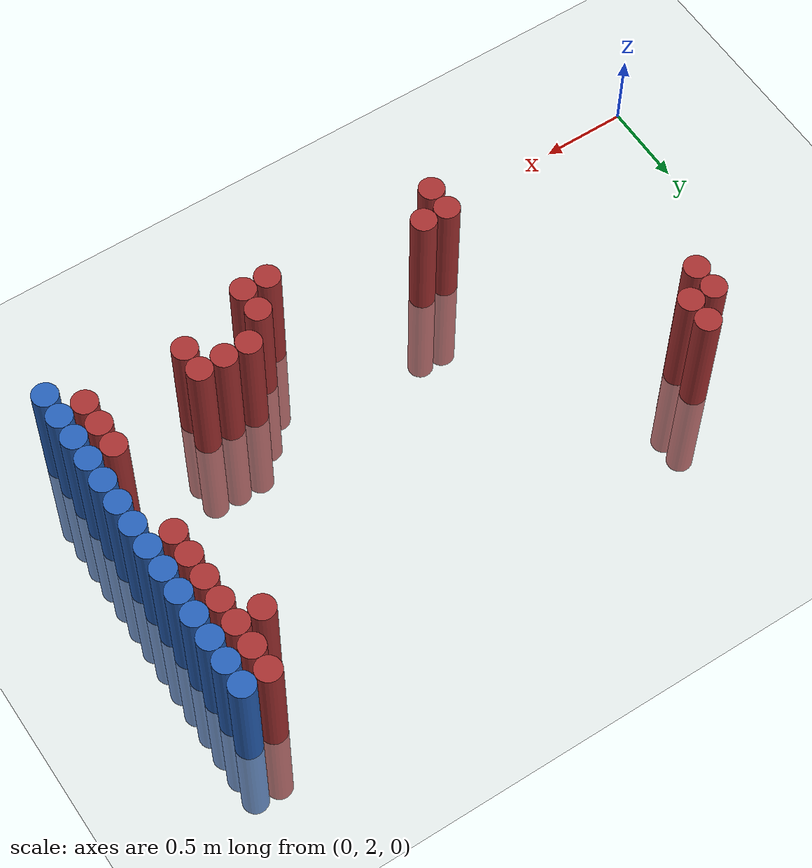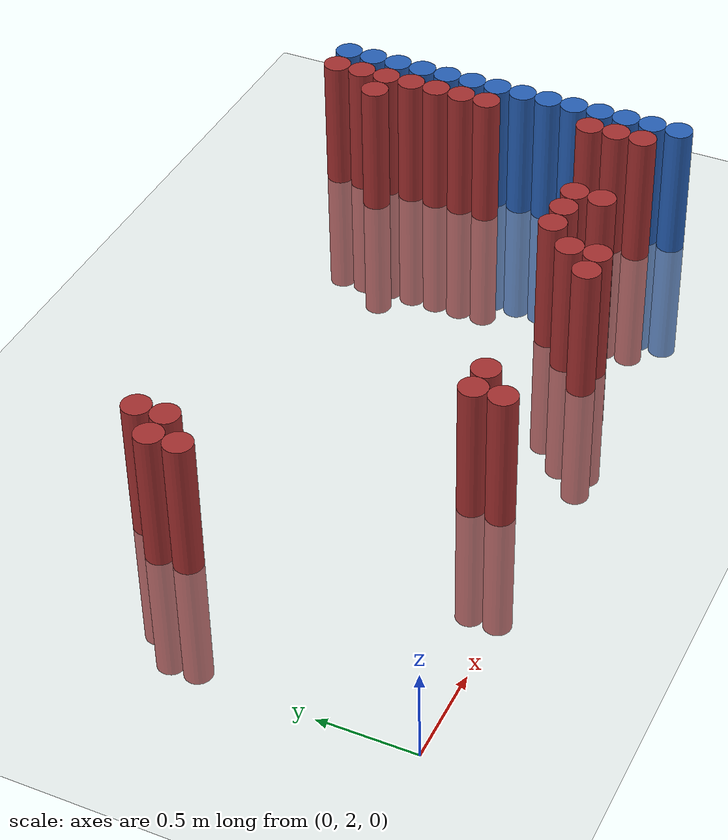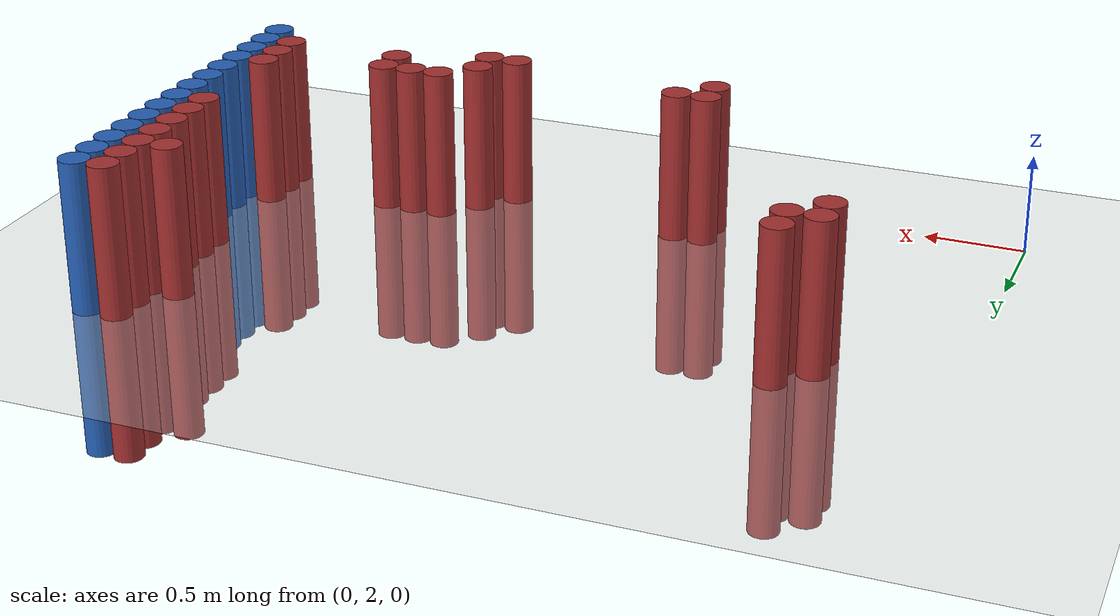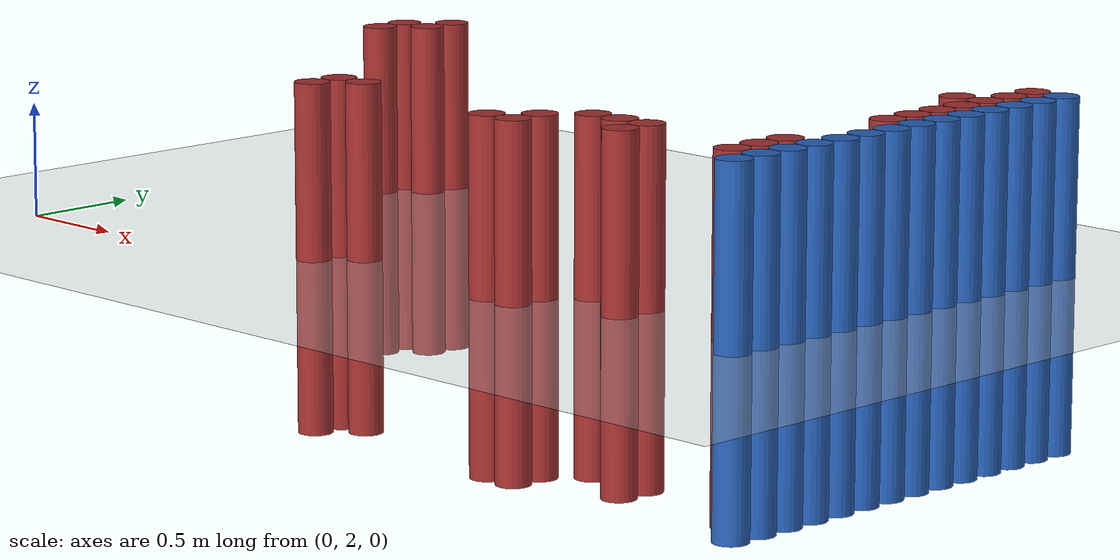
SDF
<sdf version="1.6">
 <world name="default">
  <model name="ground_plane">
   <static>1</static>
   <link name="link">
    <collision name="collision">
     <geometry><plane><normal>0 0 1</normal><size>100 100</size></plane></geometry>
     <surface><friction><ode><mu>100</mu><mu2>50</mu2></ode></friction></surface>
    </collision>
    <visual name="visual">
     <cast_shadows>0</cast_shadows>
     <geometry><plane><normal>0 0 1</normal><size>100 100</size></plane></geometry>
     <material>
      <script><uri>file://media/materials/scripts/gazebo.material</uri><name>Gazebo/Grey</name></script>
     </material>
    </visual>
   </link>
  </model>
  <model name="unit_cylinder_144">
   <static>1</static>
   <pose>3.925000 2.275000 0.000000 0.000000 0.000000 0.000000</pose>
   <link name="link">
    <inertial>
     <mass>1</mass>
     <inertia><ixx>0.145833</ixx><ixy>0</ixy><ixz>0</ixz><iyy>0.145833</iyy><iyz>0</iyz><izz>0.125</izz></inertia>
    </inertial>
    <collision name="collision">
     <geometry><cylinder><radius>0.075000</radius><length>1.5</length></cylinder></geometry>
    </collision>
    <visual name="visual">
     <geometry><cylinder><radius>0.075000</radius><length>1.5</length></cylinder></geometry>
     <material>
      <ambient>0.152000 0.379000 0.720000 1</ambient>
      <diffuse>0.152000 0.379000 0.720000 1</diffuse>
     </material>
     <material>
      <script><name>Gazebo/Grey</name><uri>file://media/materials/scripts/gazebo.material</uri></script>
     </material>
    </visual>
   </link>
  </model>
  <model name="unit_cylinder_146">
   <static>1</static>
   <pose>3.925000 2.425000 0.000000 0.000000 0.000000 0.000000</pose>
   <link name="link">
    <inertial>
     <mass>1</mass>
     <inertia><ixx>0.145833</ixx><ixy>0</ixy><ixz>0</ixz><iyy>0.145833</iyy><iyz>0</iyz><izz>0.125</izz></inertia>
    </inertial>
    <collision name="collision">
     <geometry><cylinder><radius>0.075000</radius><length>1.5</length></cylinder></geometry>
    </collision>
    <visual name="visual">
     <geometry><cylinder><radius>0.075000</radius><length>1.5</length></cylinder></geometry>
     <material>
      <ambient>0.152000 0.379000 0.720000 1</ambient>
      <diffuse>0.152000 0.379000 0.720000 1</diffuse>
     </material>
     <material>
      <script><name>Gazebo/Grey</name><uri>file://media/materials/scripts/gazebo.material</uri></script>
     </material>
    </visual>
   </link>
  </model>
  <model name="unit_cylinder_148">
   <static>1</static>
   <pose>3.925000 2.575000 0.000000 0.000000 0.000000 0.000000</pose>
   <link name="link">
    <inertial>
     <mass>1</mass>
     <inertia><ixx>0.145833</ixx><ixy>0</ixy><ixz>0</ixz><iyy>0.145833</iyy><iyz>0</iyz><izz>0.125</izz></inertia>
    </inertial>
    <collision name="collision">
     <geometry><cylinder><radius>0.075000</radius><length>1.5</length></cylinder></geometry>
    </collision>
    <visual name="visual">
     <geometry><cylinder><radius>0.075000</radius><length>1.5</length></cylinder></geometry>
     <material>
      <ambient>0.152000 0.379000 0.720000 1</ambient>
      <diffuse>0.152000 0.379000 0.720000 1</diffuse>
     </material>
     <material>
      <script><name>Gazebo/Grey</name><uri>file://media/materials/scripts/gazebo.material</uri></script>
     </material>
    </visual>
   </link>
  </model>
  <model name="unit_cylinder_150">
   <static>1</static>
   <pose>3.925000 2.725000 0.000000 0.000000 0.000000 0.000000</pose>
   <link name="link">
    <inertial>
     <mass>1</mass>
     <inertia><ixx>0.145833</ixx><ixy>0</ixy><ixz>0</ixz><iyy>0.145833</iyy><iyz>0</iyz><izz>0.125</izz></inertia>
    </inertial>
    <collision name="collision">
     <geometry><cylinder><radius>0.075000</radius><length>1.5</length></cylinder></geometry>
    </collision>
    <visual name="visual">
     <geometry><cylinder><radius>0.075000</radius><length>1.5</length></cylinder></geometry>
     <material>
      <ambient>0.152000 0.379000 0.720000 1</ambient>
      <diffuse>0.152000 0.379000 0.720000 1</diffuse>
     </material>
     <material>
      <script><name>Gazebo/Grey</name><uri>file://media/materials/scripts/gazebo.material</uri></script>
     </material>
    </visual>
   </link>
  </model>
  <model name="unit_cylinder_152">
   <static>1</static>
   <pose>3.925000 2.875000 0.000000 0.000000 0.000000 0.000000</pose>
   <link name="link">
    <inertial>
     <mass>1</mass>
     <inertia><ixx>0.145833</ixx><ixy>0</ixy><ixz>0</ixz><iyy>0.145833</iyy><iyz>0</iyz><izz>0.125</izz></inertia>
    </inertial>
    <collision name="collision">
     <geometry><cylinder><radius>0.075000</radius><length>1.5</length></cylinder></geometry>
    </collision>
    <visual name="visual">
     <geometry><cylinder><radius>0.075000</radius><length>1.5</length></cylinder></geometry>
     <material>
      <ambient>0.152000 0.379000 0.720000 1</ambient>
      <diffuse>0.152000 0.379000 0.720000 1</diffuse>
     </material>
     <material>
      <script><name>Gazebo/Grey</name><uri>file://media/materials/scripts/gazebo.material</uri></script>
     </material>
    </visual>
   </link>
  </model>
  <model name="unit_cylinder_154">
   <static>1</static>
   <pose>3.925000 3.025000 0.000000 0.000000 0.000000 0.000000</pose>
   <link name="link">
    <inertial>
     <mass>1</mass>
     <inertia><ixx>0.145833</ixx><ixy>0</ixy><ixz>0</ixz><iyy>0.145833</iyy><iyz>0</iyz><izz>0.125</izz></inertia>
    </inertial>
    <collision name="collision">
     <geometry><cylinder><radius>0.075000</radius><length>1.5</length></cylinder></geometry>
    </collision>
    <visual name="visual">
     <geometry><cylinder><radius>0.075000</radius><length>1.5</length></cylinder></geometry>
     <material>
      <ambient>0.152000 0.379000 0.720000 1</ambient>
      <diffuse>0.152000 0.379000 0.720000 1</diffuse>
     </material>
     <material>
      <script><name>Gazebo/Grey</name><uri>file://media/materials/scripts/gazebo.material</uri></script>
     </material>
    </visual>
   </link>
  </model>
  <model name="unit_cylinder_156">
   <static>1</static>
   <pose>3.925000 3.175000 0.000000 0.000000 0.000000 0.000000</pose>
   <link name="link">
    <inertial>
     <mass>1</mass>
     <inertia><ixx>0.145833</ixx><ixy>0</ixy><ixz>0</ixz><iyy>0.145833</iyy><iyz>0</iyz><izz>0.125</izz></inertia>
    </inertial>
    <collision name="collision">
     <geometry><cylinder><radius>0.075000</radius><length>1.5</length></cylinder></geometry>
    </collision>
    <visual name="visual">
     <geometry><cylinder><radius>0.075000</radius><length>1.5</length></cylinder></geometry>
     <material>
      <ambient>0.152000 0.379000 0.720000 1</ambient>
      <diffuse>0.152000 0.379000 0.720000 1</diffuse>
     </material>
     <material>
      <script><name>Gazebo/Grey</name><uri>file://media/materials/scripts/gazebo.material</uri></script>
     </material>
    </visual>
   </link>
  </model>
  <model name="unit_cylinder_158">
   <static>1</static>
   <pose>3.925000 3.325000 0.000000 0.000000 0.000000 0.000000</pose>
   <link name="link">
    <inertial>
     <mass>1</mass>
     <inertia><ixx>0.145833</ixx><ixy>0</ixy><ixz>0</ixz><iyy>0.145833</iyy><iyz>0</iyz><izz>0.125</izz></inertia>
    </inertial>
    <collision name="collision">
     <geometry><cylinder><radius>0.075000</radius><length>1.5</length></cylinder></geometry>
    </collision>
    <visual name="visual">
     <geometry><cylinder><radius>0.075000</radius><length>1.5</length></cylinder></geometry>
     <material>
      <ambient>0.152000 0.379000 0.720000 1</ambient>
      <diffuse>0.152000 0.379000 0.720000 1</diffuse>
     </material>
     <material>
      <script><name>Gazebo/Grey</name><uri>file://media/materials/scripts/gazebo.material</uri></script>
     </material>
    </visual>
   </link>
  </model>
  <model name="unit_cylinder_160">
   <static>1</static>
   <pose>3.925000 3.475000 0.000000 0.000000 0.000000 0.000000</pose>
   <link name="link">
    <inertial>
     <mass>1</mass>
     <inertia><ixx>0.145833</ixx><ixy>0</ixy><ixz>0</ixz><iyy>0.145833</iyy><iyz>0</iyz><izz>0.125</izz></inertia>
    </inertial>
    <collision name="collision">
     <geometry><cylinder><radius>0.075000</radius><length>1.5</length></cylinder></geometry>
    </collision>
    <visual name="visual">
     <geometry><cylinder><radius>0.075000</radius><length>1.5</length></cylinder></geometry>
     <material>
      <ambient>0.152000 0.379000 0.720000 1</ambient>
      <diffuse>0.152000 0.379000 0.720000 1</diffuse>
     </material>
     <material>
      <script><name>Gazebo/Grey</name><uri>file://media/materials/scripts/gazebo.material</uri></script>
     </material>
    </visual>
   </link>
  </model>
  <model name="unit_cylinder_162">
   <static>1</static>
   <pose>3.925000 3.625000 0.000000 0.000000 0.000000 0.000000</pose>
   <link name="link">
    <inertial>
     <mass>1</mass>
     <inertia><ixx>0.145833</ixx><ixy>0</ixy><ixz>0</ixz><iyy>0.145833</iyy><iyz>0</iyz><izz>0.125</izz></inertia>
    </inertial>
    <collision name="collision">
     <geometry><cylinder><radius>0.075000</radius><length>1.5</length></cylinder></geometry>
    </collision>
    <visual name="visual">
     <geometry><cylinder><radius>0.075000</radius><length>1.5</length></cylinder></geometry>
     <material>
      <ambient>0.152000 0.379000 0.720000 1</ambient>
      <diffuse>0.152000 0.379000 0.720000 1</diffuse>
     </material>
     <material>
      <script><name>Gazebo/Grey</name><uri>file://media/materials/scripts/gazebo.material</uri></script>
     </material>
    </visual>
   </link>
  </model>
  <model name="unit_cylinder_164">
   <static>1</static>
   <pose>3.925000 3.775000 0.000000 0.000000 0.000000 0.000000</pose>
   <link name="link">
    <inertial>
     <mass>1</mass>
     <inertia><ixx>0.145833</ixx><ixy>0</ixy><ixz>0</ixz><iyy>0.145833</iyy><iyz>0</iyz><izz>0.125</izz></inertia>
    </inertial>
    <collision name="collision">
     <geometry><cylinder><radius>0.075000</radius><length>1.5</length></cylinder></geometry>
    </collision>
    <visual name="visual">
     <geometry><cylinder><radius>0.075000</radius><length>1.5</length></cylinder></geometry>
     <material>
      <ambient>0.152000 0.379000 0.720000 1</ambient>
      <diffuse>0.152000 0.379000 0.720000 1</diffuse>
     </material>
     <material>
      <script><name>Gazebo/Grey</name><uri>file://media/materials/scripts/gazebo.material</uri></script>
     </material>
    </visual>
   </link>
  </model>
  <model name="unit_cylinder_166">
   <static>1</static>
   <pose>3.925000 3.925000 0.000000 0.000000 0.000000 0.000000</pose>
   <link name="link">
    <inertial>
     <mass>1</mass>
     <inertia><ixx>0.145833</ixx><ixy>0</ixy><ixz>0</ixz><iyy>0.145833</iyy><iyz>0</iyz><izz>0.125</izz></inertia>
    </inertial>
    <collision name="collision">
     <geometry><cylinder><radius>0.075000</radius><length>1.5</length></cylinder></geometry>
    </collision>
    <visual name="visual">
     <geometry><cylinder><radius>0.075000</radius><length>1.5</length></cylinder></geometry>
     <material>
      <ambient>0.152000 0.379000 0.720000 1</ambient>
      <diffuse>0.152000 0.379000 0.720000 1</diffuse>
     </material>
     <material>
      <script><name>Gazebo/Grey</name><uri>file://media/materials/scripts/gazebo.material</uri></script>
     </material>
    </visual>
   </link>
  </model>
  <model name="unit_cylinder_168">
   <static>1</static>
   <pose>3.925000 4.075000 0.000000 0.000000 0.000000 0.000000</pose>
   <link name="link">
    <inertial>
     <mass>1</mass>
     <inertia><ixx>0.145833</ixx><ixy>0</ixy><ixz>0</ixz><iyy>0.145833</iyy><iyz>0</iyz><izz>0.125</izz></inertia>
    </inertial>
    <collision name="collision">
     <geometry><cylinder><radius>0.075000</radius><length>1.5</length></cylinder></geometry>
    </collision>
    <visual name="visual">
     <geometry><cylinder><radius>0.075000</radius><length>1.5</length></cylinder></geometry>
     <material>
      <ambient>0.152000 0.379000 0.720000 1</ambient>
      <diffuse>0.152000 0.379000 0.720000 1</diffuse>
     </material>
     <material>
      <script><name>Gazebo/Grey</name><uri>file://media/materials/scripts/gazebo.material</uri></script>
     </material>
    </visual>
   </link>
  </model>
  <model name="unit_cylinder_170">
   <static>1</static>
   <pose>3.925000 4.225000 0.000000 0.000000 0.000000 0.000000</pose>
   <link name="link">
    <inertial>
     <mass>1</mass>
     <inertia><ixx>0.145833</ixx><ixy>0</ixy><ixz>0</ixz><iyy>0.145833</iyy><iyz>0</iyz><izz>0.125</izz></inertia>
    </inertial>
    <collision name="collision">
     <geometry><cylinder><radius>0.075000</radius><length>1.5</length></cylinder></geometry>
    </collision>
    <visual name="visual">
     <geometry><cylinder><radius>0.075000</radius><length>1.5</length></cylinder></geometry>
     <material>
      <ambient>0.152000 0.379000 0.720000 1</ambient>
      <diffuse>0.152000 0.379000 0.720000 1</diffuse>
     </material>
     <material>
      <script><name>Gazebo/Grey</name><uri>file://media/materials/scripts/gazebo.material</uri></script>
     </material>
    </visual>
   </link>
  </model>
  <model name="unit_cylinder_348">
   <static>1</static>
   <pose>0.625000 3.475000 0.000000 0.000000 0.000000 0.000000</pose>
   <link name="link">
    <inertial>
     <mass>1</mass>
     <inertia><ixx>0.145833</ixx><ixy>0</ixy><ixz>0</ixz><iyy>0.145833</iyy><iyz>0</iyz><izz>0.125</izz></inertia>
    </inertial>
    <collision name="collision">
     <geometry><cylinder><radius>0.075000</radius><length>1.5</length></cylinder></geometry>
    </collision>
    <visual name="visual">
     <geometry><cylinder><radius>0.075000</radius><length>1.5</length></cylinder></geometry>
     <material>
      <ambient>0.648000 0.192000 0.192000 1</ambient>
      <diffuse>0.648000 0.192000 0.192000 1</diffuse>
     </material>
     <material>
      <script><name>Gazebo/Grey</name><uri>file://media/materials/scripts/gazebo.material</uri></script>
     </material>
    </visual>
   </link>
  </model>
  <model name="unit_cylinder_349">
   <static>1</static>
   <pose>0.625000 3.625000 0.000000 0.000000 0.000000 0.000000</pose>
   <link name="link">
    <inertial>
     <mass>1</mass>
     <inertia><ixx>0.145833</ixx><ixy>0</ixy><ixz>0</ixz><iyy>0.145833</iyy><iyz>0</iyz><izz>0.125</izz></inertia>
    </inertial>
    <collision name="collision">
     <geometry><cylinder><radius>0.075000</radius><length>1.5</length></cylinder></geometry>
    </collision>
    <visual name="visual">
     <geometry><cylinder><radius>0.075000</radius><length>1.5</length></cylinder></geometry>
     <material>
      <ambient>0.648000 0.192000 0.192000 1</ambient>
      <diffuse>0.648000 0.192000 0.192000 1</diffuse>
     </material>
     <material>
      <script><name>Gazebo/Grey</name><uri>file://media/materials/scripts/gazebo.material</uri></script>
     </material>
    </visual>
   </link>
  </model>
  <model name="unit_cylinder_355">
   <static>1</static>
   <pose>0.775000 3.625000 0.000000 0.000000 0.000000 0.000000</pose>
   <link name="link">
    <inertial>
     <mass>1</mass>
     <inertia><ixx>0.145833</ixx><ixy>0</ixy><ixz>0</ixz><iyy>0.145833</iyy><iyz>0</iyz><izz>0.125</izz></inertia>
    </inertial>
    <collision name="collision">
     <geometry><cylinder><radius>0.075000</radius><length>1.5</length></cylinder></geometry>
    </collision>
    <visual name="visual">
     <geometry><cylinder><radius>0.075000</radius><length>1.5</length></cylinder></geometry>
     <material>
      <ambient>0.648000 0.192000 0.192000 1</ambient>
      <diffuse>0.648000 0.192000 0.192000 1</diffuse>
     </material>
     <material>
      <script><name>Gazebo/Grey</name><uri>file://media/materials/scripts/gazebo.material</uri></script>
     </material>
    </visual>
   </link>
  </model>
  <model name="unit_cylinder_356">
   <static>1</static>
   <pose>0.775000 3.775000 0.000000 0.000000 0.000000 0.000000</pose>
   <link name="link">
    <inertial>
     <mass>1</mass>
     <inertia><ixx>0.145833</ixx><ixy>0</ixy><ixz>0</ixz><iyy>0.145833</iyy><iyz>0</iyz><izz>0.125</izz></inertia>
    </inertial>
    <collision name="collision">
     <geometry><cylinder><radius>0.075000</radius><length>1.5</length></cylinder></geometry>
    </collision>
    <visual name="visual">
     <geometry><cylinder><radius>0.075000</radius><length>1.5</length></cylinder></geometry>
     <material>
      <ambient>0.648000 0.192000 0.192000 1</ambient>
      <diffuse>0.648000 0.192000 0.192000 1</diffuse>
     </material>
     <material>
      <script><name>Gazebo/Grey</name><uri>file://media/materials/scripts/gazebo.material</uri></script>
     </material>
    </visual>
   </link>
  </model>
  <model name="unit_cylinder_378">
   <static>1</static>
   <pose>1.525000 2.275000 0.000000 0.000000 0.000000 0.000000</pose>
   <link name="link">
    <inertial>
     <mass>1</mass>
     <inertia><ixx>0.145833</ixx><ixy>0</ixy><ixz>0</ixz><iyy>0.145833</iyy><iyz>0</iyz><izz>0.125</izz></inertia>
    </inertial>
    <collision name="collision">
     <geometry><cylinder><radius>0.075000</radius><length>1.5</length></cylinder></geometry>
    </collision>
    <visual name="visual">
     <geometry><cylinder><radius>0.075000</radius><length>1.5</length></cylinder></geometry>
     <material>
      <ambient>0.648000 0.192000 0.192000 1</ambient>
      <diffuse>0.648000 0.192000 0.192000 1</diffuse>
     </material>
     <material>
      <script><name>Gazebo/Grey</name><uri>file://media/materials/scripts/gazebo.material</uri></script>
     </material>
    </visual>
   </link>
  </model>
  <model name="unit_cylinder_379">
   <static>1</static>
   <pose>1.525000 2.425000 0.000000 0.000000 0.000000 0.000000</pose>
   <link name="link">
    <inertial>
     <mass>1</mass>
     <inertia><ixx>0.145833</ixx><ixy>0</ixy><ixz>0</ixz><iyy>0.145833</iyy><iyz>0</iyz><izz>0.125</izz></inertia>
    </inertial>
    <collision name="collision">
     <geometry><cylinder><radius>0.075000</radius><length>1.5</length></cylinder></geometry>
    </collision>
    <visual name="visual">
     <geometry><cylinder><radius>0.075000</radius><length>1.5</length></cylinder></geometry>
     <material>
      <ambient>0.648000 0.192000 0.192000 1</ambient>
      <diffuse>0.648000 0.192000 0.192000 1</diffuse>
     </material>
     <material>
      <script><name>Gazebo/Grey</name><uri>file://media/materials/scripts/gazebo.material</uri></script>
     </material>
    </visual>
   </link>
  </model>
  <model name="unit_cylinder_383">
   <static>1</static>
   <pose>1.675000 2.425000 0.000000 0.000000 0.000000 0.000000</pose>
   <link name="link">
    <inertial>
     <mass>1</mass>
     <inertia><ixx>0.145833</ixx><ixy>0</ixy><ixz>0</ixz><iyy>0.145833</iyy><iyz>0</iyz><izz>0.125</izz></inertia>
    </inertial>
    <collision name="collision">
     <geometry><cylinder><radius>0.075000</radius><length>1.5</length></cylinder></geometry>
    </collision>
    <visual name="visual">
     <geometry><cylinder><radius>0.075000</radius><length>1.5</length></cylinder></geometry>
     <material>
      <ambient>0.648000 0.192000 0.192000 1</ambient>
      <diffuse>0.648000 0.192000 0.192000 1</diffuse>
     </material>
     <material>
      <script><name>Gazebo/Grey</name><uri>file://media/materials/scripts/gazebo.material</uri></script>
     </material>
    </visual>
   </link>
  </model>
  <model name="unit_cylinder_404">
   <static>1</static>
   <pose>2.575000 2.275000 0.000000 0.000000 0.000000 0.000000</pose>
   <link name="link">
    <inertial>
     <mass>1</mass>
     <inertia><ixx>0.145833</ixx><ixy>0</ixy><ixz>0</ixz><iyy>0.145833</iyy><iyz>0</iyz><izz>0.125</izz></inertia>
    </inertial>
    <collision name="collision">
     <geometry><cylinder><radius>0.075000</radius><length>1.5</length></cylinder></geometry>
    </collision>
    <visual name="visual">
     <geometry><cylinder><radius>0.075000</radius><length>1.5</length></cylinder></geometry>
     <material>
      <ambient>0.648000 0.192000 0.192000 1</ambient>
      <diffuse>0.648000 0.192000 0.192000 1</diffuse>
     </material>
     <material>
      <script><name>Gazebo/Grey</name><uri>file://media/materials/scripts/gazebo.material</uri></script>
     </material>
    </visual>
   </link>
  </model>
  <model name="unit_cylinder_406">
   <static>1</static>
   <pose>2.725000 2.275000 0.000000 0.000000 0.000000 0.000000</pose>
   <link name="link">
    <inertial>
     <mass>1</mass>
     <inertia><ixx>0.145833</ixx><ixy>0</ixy><ixz>0</ixz><iyy>0.145833</iyy><iyz>0</iyz><izz>0.125</izz></inertia>
    </inertial>
    <collision name="collision">
     <geometry><cylinder><radius>0.075000</radius><length>1.5</length></cylinder></geometry>
    </collision>
    <visual name="visual">
     <geometry><cylinder><radius>0.075000</radius><length>1.5</length></cylinder></geometry>
     <material>
      <ambient>0.648000 0.192000 0.192000 1</ambient>
      <diffuse>0.648000 0.192000 0.192000 1</diffuse>
     </material>
     <material>
      <script><name>Gazebo/Grey</name><uri>file://media/materials/scripts/gazebo.material</uri></script>
     </material>
    </visual>
   </link>
  </model>
  <model name="unit_cylinder_407">
   <static>1</static>
   <pose>2.725000 2.425000 0.000000 0.000000 0.000000 0.000000</pose>
   <link name="link">
    <inertial>
     <mass>1</mass>
     <inertia><ixx>0.145833</ixx><ixy>0</ixy><ixz>0</ixz><iyy>0.145833</iyy><iyz>0</iyz><izz>0.125</izz></inertia>
    </inertial>
    <collision name="collision">
     <geometry><cylinder><radius>0.075000</radius><length>1.5</length></cylinder></geometry>
    </collision>
    <visual name="visual">
     <geometry><cylinder><radius>0.075000</radius><length>1.5</length></cylinder></geometry>
     <material>
      <ambient>0.648000 0.192000 0.192000 1</ambient>
      <diffuse>0.648000 0.192000 0.192000 1</diffuse>
     </material>
     <material>
      <script><name>Gazebo/Grey</name><uri>file://media/materials/scripts/gazebo.material</uri></script>
     </material>
    </visual>
   </link>
  </model>
  <model name="unit_cylinder_408">
   <static>1</static>
   <pose>2.875000 2.575000 0.000000 0.000000 0.000000 0.000000</pose>
   <link name="link">
    <inertial>
     <mass>1</mass>
     <inertia><ixx>0.145833</ixx><ixy>0</ixy><ixz>0</ixz><iyy>0.145833</iyy><iyz>0</iyz><izz>0.125</izz></inertia>
    </inertial>
    <collision name="collision">
     <geometry><cylinder><radius>0.075000</radius><length>1.5</length></cylinder></geometry>
    </collision>
    <visual name="visual">
     <geometry><cylinder><radius>0.075000</radius><length>1.5</length></cylinder></geometry>
     <material>
      <ambient>0.648000 0.192000 0.192000 1</ambient>
      <diffuse>0.648000 0.192000 0.192000 1</diffuse>
     </material>
     <material>
      <script><name>Gazebo/Grey</name><uri>file://media/materials/scripts/gazebo.material</uri></script>
     </material>
    </visual>
   </link>
  </model>
  <model name="unit_cylinder_411">
   <static>1</static>
   <pose>3.025000 2.575000 0.000000 0.000000 0.000000 0.000000</pose>
   <link name="link">
    <inertial>
     <mass>1</mass>
     <inertia><ixx>0.145833</ixx><ixy>0</ixy><ixz>0</ixz><iyy>0.145833</iyy><iyz>0</iyz><izz>0.125</izz></inertia>
    </inertial>
    <collision name="collision">
     <geometry><cylinder><radius>0.075000</radius><length>1.5</length></cylinder></geometry>
    </collision>
    <visual name="visual">
     <geometry><cylinder><radius>0.075000</radius><length>1.5</length></cylinder></geometry>
     <material>
      <ambient>0.648000 0.192000 0.192000 1</ambient>
      <diffuse>0.648000 0.192000 0.192000 1</diffuse>
     </material>
     <material>
      <script><name>Gazebo/Grey</name><uri>file://media/materials/scripts/gazebo.material</uri></script>
     </material>
    </visual>
   </link>
  </model>
  <model name="unit_cylinder_414">
   <static>1</static>
   <pose>3.175000 2.425000 0.000000 0.000000 0.000000 0.000000</pose>
   <link name="link">
    <inertial>
     <mass>1</mass>
     <inertia><ixx>0.145833</ixx><ixy>0</ixy><ixz>0</ixz><iyy>0.145833</iyy><iyz>0</iyz><izz>0.125</izz></inertia>
    </inertial>
    <collision name="collision">
     <geometry><cylinder><radius>0.075000</radius><length>1.5</length></cylinder></geometry>
    </collision>
    <visual name="visual">
     <geometry><cylinder><radius>0.075000</radius><length>1.5</length></cylinder></geometry>
     <material>
      <ambient>0.648000 0.192000 0.192000 1</ambient>
      <diffuse>0.648000 0.192000 0.192000 1</diffuse>
     </material>
     <material>
      <script><name>Gazebo/Grey</name><uri>file://media/materials/scripts/gazebo.material</uri></script>
     </material>
    </visual>
   </link>
  </model>
  <model name="unit_cylinder_415">
   <static>1</static>
   <pose>3.175000 2.575000 0.000000 0.000000 0.000000 0.000000</pose>
   <link name="link">
    <inertial>
     <mass>1</mass>
     <inertia><ixx>0.145833</ixx><ixy>0</ixy><ixz>0</ixz><iyy>0.145833</iyy><iyz>0</iyz><izz>0.125</izz></inertia>
    </inertial>
    <collision name="collision">
     <geometry><cylinder><radius>0.075000</radius><length>1.5</length></cylinder></geometry>
    </collision>
    <visual name="visual">
     <geometry><cylinder><radius>0.075000</radius><length>1.5</length></cylinder></geometry>
     <material>
      <ambient>0.648000 0.192000 0.192000 1</ambient>
      <diffuse>0.648000 0.192000 0.192000 1</diffuse>
     </material>
     <material>
      <script><name>Gazebo/Grey</name><uri>file://media/materials/scripts/gazebo.material</uri></script>
     </material>
    </visual>
   </link>
  </model>
  <model name="unit_cylinder_438">
   <static>1</static>
   <pose>3.625000 3.925000 0.000000 0.000000 0.000000 0.000000</pose>
   <link name="link">
    <inertial>
     <mass>1</mass>
     <inertia><ixx>0.145833</ixx><ixy>0</ixy><ixz>0</ixz><iyy>0.145833</iyy><iyz>0</iyz><izz>0.125</izz></inertia>
    </inertial>
    <collision name="collision">
     <geometry><cylinder><radius>0.075000</radius><length>1.5</length></cylinder></geometry>
    </collision>
    <visual name="visual">
     <geometry><cylinder><radius>0.075000</radius><length>1.5</length></cylinder></geometry>
     <material>
      <ambient>0.648000 0.192000 0.192000 1</ambient>
      <diffuse>0.648000 0.192000 0.192000 1</diffuse>
     </material>
     <material>
      <script><name>Gazebo/Grey</name><uri>file://media/materials/scripts/gazebo.material</uri></script>
     </material>
    </visual>
   </link>
  </model>
  <model name="unit_cylinder_456">
   <static>1</static>
   <pose>3.775000 2.425000 0.000000 0.000000 0.000000 0.000000</pose>
   <link name="link">
    <inertial>
     <mass>1</mass>
     <inertia><ixx>0.145833</ixx><ixy>0</ixy><ixz>0</ixz><iyy>0.145833</iyy><iyz>0</iyz><izz>0.125</izz></inertia>
    </inertial>
    <collision name="collision">
     <geometry><cylinder><radius>0.075000</radius><length>1.5</length></cylinder></geometry>
    </collision>
    <visual name="visual">
     <geometry><cylinder><radius>0.075000</radius><length>1.5</length></cylinder></geometry>
     <material>
      <ambient>0.648000 0.192000 0.192000 1</ambient>
      <diffuse>0.648000 0.192000 0.192000 1</diffuse>
     </material>
     <material>
      <script><name>Gazebo/Grey</name><uri>file://media/materials/scripts/gazebo.material</uri></script>
     </material>
    </visual>
   </link>
  </model>
  <model name="unit_cylinder_457">
   <static>1</static>
   <pose>3.775000 2.575000 0.000000 0.000000 0.000000 0.000000</pose>
   <link name="link">
    <inertial>
     <mass>1</mass>
     <inertia><ixx>0.145833</ixx><ixy>0</ixy><ixz>0</ixz><iyy>0.145833</iyy><iyz>0</iyz><izz>0.125</izz></inertia>
    </inertial>
    <collision name="collision">
     <geometry><cylinder><radius>0.075000</radius><length>1.5</length></cylinder></geometry>
    </collision>
    <visual name="visual">
     <geometry><cylinder><radius>0.075000</radius><length>1.5</length></cylinder></geometry>
     <material>
      <ambient>0.648000 0.192000 0.192000 1</ambient>
      <diffuse>0.648000 0.192000 0.192000 1</diffuse>
     </material>
     <material>
      <script><name>Gazebo/Grey</name><uri>file://media/materials/scripts/gazebo.material</uri></script>
     </material>
    </visual>
   </link>
  </model>
  <model name="unit_cylinder_458">
   <static>1</static>
   <pose>3.775000 2.725000 0.000000 0.000000 0.000000 0.000000</pose>
   <link name="link">
    <inertial>
     <mass>1</mass>
     <inertia><ixx>0.145833</ixx><ixy>0</ixy><ixz>0</ixz><iyy>0.145833</iyy><iyz>0</iyz><izz>0.125</izz></inertia>
    </inertial>
    <collision name="collision">
     <geometry><cylinder><radius>0.075000</radius><length>1.5</length></cylinder></geometry>
    </collision>
    <visual name="visual">
     <geometry><cylinder><radius>0.075000</radius><length>1.5</length></cylinder></geometry>
     <material>
      <ambient>0.648000 0.192000 0.192000 1</ambient>
      <diffuse>0.648000 0.192000 0.192000 1</diffuse>
     </material>
     <material>
      <script><name>Gazebo/Grey</name><uri>file://media/materials/scripts/gazebo.material</uri></script>
     </material>
    </visual>
   </link>
  </model>
  <model name="unit_cylinder_459">
   <static>1</static>
   <pose>3.775000 3.325000 0.000000 0.000000 0.000000 0.000000</pose>
   <link name="link">
    <inertial>
     <mass>1</mass>
     <inertia><ixx>0.145833</ixx><ixy>0</ixy><ixz>0</ixz><iyy>0.145833</iyy><iyz>0</iyz><izz>0.125</izz></inertia>
    </inertial>
    <collision name="collision">
     <geometry><cylinder><radius>0.075000</radius><length>1.5</length></cylinder></geometry>
    </collision>
    <visual name="visual">
     <geometry><cylinder><radius>0.075000</radius><length>1.5</length></cylinder></geometry>
     <material>
      <ambient>0.648000 0.192000 0.192000 1</ambient>
      <diffuse>0.648000 0.192000 0.192000 1</diffuse>
     </material>
     <material>
      <script><name>Gazebo/Grey</name><uri>file://media/materials/scripts/gazebo.material</uri></script>
     </material>
    </visual>
   </link>
  </model>
  <model name="unit_cylinder_460">
   <static>1</static>
   <pose>3.775000 3.475000 0.000000 0.000000 0.000000 0.000000</pose>
   <link name="link">
    <inertial>
     <mass>1</mass>
     <inertia><ixx>0.145833</ixx><ixy>0</ixy><ixz>0</ixz><iyy>0.145833</iyy><iyz>0</iyz><izz>0.125</izz></inertia>
    </inertial>
    <collision name="collision">
     <geometry><cylinder><radius>0.075000</radius><length>1.5</length></cylinder></geometry>
    </collision>
    <visual name="visual">
     <geometry><cylinder><radius>0.075000</radius><length>1.5</length></cylinder></geometry>
     <material>
      <ambient>0.648000 0.192000 0.192000 1</ambient>
      <diffuse>0.648000 0.192000 0.192000 1</diffuse>
     </material>
     <material>
      <script><name>Gazebo/Grey</name><uri>file://media/materials/scripts/gazebo.material</uri></script>
     </material>
    </visual>
   </link>
  </model>
  <model name="unit_cylinder_461">
   <static>1</static>
   <pose>3.775000 3.625000 0.000000 0.000000 0.000000 0.000000</pose>
   <link name="link">
    <inertial>
     <mass>1</mass>
     <inertia><ixx>0.145833</ixx><ixy>0</ixy><ixz>0</ixz><iyy>0.145833</iyy><iyz>0</iyz><izz>0.125</izz></inertia>
    </inertial>
    <collision name="collision">
     <geometry><cylinder><radius>0.075000</radius><length>1.5</length></cylinder></geometry>
    </collision>
    <visual name="visual">
     <geometry><cylinder><radius>0.075000</radius><length>1.5</length></cylinder></geometry>
     <material>
      <ambient>0.648000 0.192000 0.192000 1</ambient>
      <diffuse>0.648000 0.192000 0.192000 1</diffuse>
     </material>
     <material>
      <script><name>Gazebo/Grey</name><uri>file://media/materials/scripts/gazebo.material</uri></script>
     </material>
    </visual>
   </link>
  </model>
  <model name="unit_cylinder_462">
   <static>1</static>
   <pose>3.775000 3.775000 0.000000 0.000000 0.000000 0.000000</pose>
   <link name="link">
    <inertial>
     <mass>1</mass>
     <inertia><ixx>0.145833</ixx><ixy>0</ixy><ixz>0</ixz><iyy>0.145833</iyy><iyz>0</iyz><izz>0.125</izz></inertia>
    </inertial>
    <collision name="collision">
     <geometry><cylinder><radius>0.075000</radius><length>1.5</length></cylinder></geometry>
    </collision>
    <visual name="visual">
     <geometry><cylinder><radius>0.075000</radius><length>1.5</length></cylinder></geometry>
     <material>
      <ambient>0.648000 0.192000 0.192000 1</ambient>
      <diffuse>0.648000 0.192000 0.192000 1</diffuse>
     </material>
     <material>
      <script><name>Gazebo/Grey</name><uri>file://media/materials/scripts/gazebo.material</uri></script>
     </material>
    </visual>
   </link>
  </model>
  <model name="unit_cylinder_463">
   <static>1</static>
   <pose>3.775000 3.925000 0.000000 0.000000 0.000000 0.000000</pose>
   <link name="link">
    <inertial>
     <mass>1</mass>
     <inertia><ixx>0.145833</ixx><ixy>0</ixy><ixz>0</ixz><iyy>0.145833</iyy><iyz>0</iyz><izz>0.125</izz></inertia>
    </inertial>
    <collision name="collision">
     <geometry><cylinder><radius>0.075000</radius><length>1.5</length></cylinder></geometry>
    </collision>
    <visual name="visual">
     <geometry><cylinder><radius>0.075000</radius><length>1.5</length></cylinder></geometry>
     <material>
      <ambient>0.648000 0.192000 0.192000 1</ambient>
      <diffuse>0.648000 0.192000 0.192000 1</diffuse>
     </material>
     <material>
      <script><name>Gazebo/Grey</name><uri>file://media/materials/scripts/gazebo.material</uri></script>
     </material>
    </visual>
   </link>
  </model>
  <model name="unit_cylinder_464">
   <static>1</static>
   <pose>3.775000 4.075000 0.000000 0.000000 0.000000 0.000000</pose>
   <link name="link">
    <inertial>
     <mass>1</mass>
     <inertia><ixx>0.145833</ixx><ixy>0</ixy><ixz>0</ixz><iyy>0.145833</iyy><iyz>0</iyz><izz>0.125</izz></inertia>
    </inertial>
    <collision name="collision">
     <geometry><cylinder><radius>0.075000</radius><length>1.5</length></cylinder></geometry>
    </collision>
    <visual name="visual">
     <geometry><cylinder><radius>0.075000</radius><length>1.5</length></cylinder></geometry>
     <material>
      <ambient>0.648000 0.192000 0.192000 1</ambient>
      <diffuse>0.648000 0.192000 0.192000 1</diffuse>
     </material>
     <material>
      <script><name>Gazebo/Grey</name><uri>file://media/materials/scripts/gazebo.material</uri></script>
     </material>
    </visual>
   </link>
  </model>
  <model name="unit_cylinder_465">
   <static>1</static>
   <pose>3.775000 4.225000 0.000000 0.000000 0.000000 0.000000</pose>
   <link name="link">
    <inertial>
     <mass>1</mass>
     <inertia><ixx>0.145833</ixx><ixy>0</ixy><ixz>0</ixz><iyy>0.145833</iyy><iyz>0</iyz><izz>0.125</izz></inertia>
    </inertial>
    <collision name="collision">
     <geometry><cylinder><radius>0.075000</radius><length>1.5</length></cylinder></geometry>
    </collision>
    <visual name="visual">
     <geometry><cylinder><radius>0.075000</radius><length>1.5</length></cylinder></geometry>
     <material>
      <ambient>0.648000 0.192000 0.192000 1</ambient>
      <diffuse>0.648000 0.192000 0.192000 1</diffuse>
     </material>
     <material>
      <script><name>Gazebo/Grey</name><uri>file://media/materials/scripts/gazebo.material</uri></script>
     </material>
    </visual>
   </link>
  </model>
  <model name="unit_cylinder_498">
   <static>1</static>
   <pose>3.925000 2.275000 0.000000 0.000000 0.000000 0.000000</pose>
   <link name="link">
    <inertial>
     <mass>1</mass>
     <inertia><ixx>0.145833</ixx><ixy>0</ixy><ixz>0</ixz><iyy>0.145833</iyy><iyz>0</iyz><izz>0.125</izz></inertia>
    </inertial>
    <collision name="collision">
     <geometry><cylinder><radius>0.075000</radius><length>1.5</length></cylinder></geometry>
    </collision>
    <visual name="visual">
     <geometry><cylinder><radius>0.075000</radius><length>1.5</length></cylinder></geometry>
     <material>
      <ambient>0.152000 0.379000 0.720000 1</ambient>
      <diffuse>0.152000 0.379000 0.720000 1</diffuse>
     </material>
     <material>
      <script><name>Gazebo/Grey</name><uri>file://media/materials/scripts/gazebo.material</uri></script>
     </material>
    </visual>
   </link>
  </model>
  <model name="unit_cylinder_499">
   <static>1</static>
   <pose>3.925000 2.425000 0.000000 0.000000 0.000000 0.000000</pose>
   <link name="link">
    <inertial>
     <mass>1</mass>
     <inertia><ixx>0.145833</ixx><ixy>0</ixy><ixz>0</ixz><iyy>0.145833</iyy><iyz>0</iyz><izz>0.125</izz></inertia>
    </inertial>
    <collision name="collision">
     <geometry><cylinder><radius>0.075000</radius><length>1.5</length></cylinder></geometry>
    </collision>
    <visual name="visual">
     <geometry><cylinder><radius>0.075000</radius><length>1.5</length></cylinder></geometry>
     <material>
      <ambient>0.152000 0.379000 0.720000 1</ambient>
      <diffuse>0.152000 0.379000 0.720000 1</diffuse>
     </material>
     <material>
      <script><name>Gazebo/Grey</name><uri>file://media/materials/scripts/gazebo.material</uri></script>
     </material>
    </visual>
   </link>
  </model>
  <model name="unit_cylinder_500">
   <static>1</static>
   <pose>3.925000 2.575000 0.000000 0.000000 0.000000 0.000000</pose>
   <link name="link">
    <inertial>
     <mass>1</mass>
     <inertia><ixx>0.145833</ixx><ixy>0</ixy><ixz>0</ixz><iyy>0.145833</iyy><iyz>0</iyz><izz>0.125</izz></inertia>
    </inertial>
    <collision name="collision">
     <geometry><cylinder><radius>0.075000</radius><length>1.5</length></cylinder></geometry>
    </collision>
    <visual name="visual">
     <geometry><cylinder><radius>0.075000</radius><length>1.5</length></cylinder></geometry>
     <material>
      <ambient>0.152000 0.379000 0.720000 1</ambient>
      <diffuse>0.152000 0.379000 0.720000 1</diffuse>
     </material>
     <material>
      <script><name>Gazebo/Grey</name><uri>file://media/materials/scripts/gazebo.material</uri></script>
     </material>
    </visual>
   </link>
  </model>
  <model name="unit_cylinder_501">
   <static>1</static>
   <pose>3.925000 2.725000 0.000000 0.000000 0.000000 0.000000</pose>
   <link name="link">
    <inertial>
     <mass>1</mass>
     <inertia><ixx>0.145833</ixx><ixy>0</ixy><ixz>0</ixz><iyy>0.145833</iyy><iyz>0</iyz><izz>0.125</izz></inertia>
    </inertial>
    <collision name="collision">
     <geometry><cylinder><radius>0.075000</radius><length>1.5</length></cylinder></geometry>
    </collision>
    <visual name="visual">
     <geometry><cylinder><radius>0.075000</radius><length>1.5</length></cylinder></geometry>
     <material>
      <ambient>0.152000 0.379000 0.720000 1</ambient>
      <diffuse>0.152000 0.379000 0.720000 1</diffuse>
     </material>
     <material>
      <script><name>Gazebo/Grey</name><uri>file://media/materials/scripts/gazebo.material</uri></script>
     </material>
    </visual>
   </link>
  </model>
  <model name="unit_cylinder_502">
   <static>1</static>
   <pose>3.925000 2.875000 0.000000 0.000000 0.000000 0.000000</pose>
   <link name="link">
    <inertial>
     <mass>1</mass>
     <inertia><ixx>0.145833</ixx><ixy>0</ixy><ixz>0</ixz><iyy>0.145833</iyy><iyz>0</iyz><izz>0.125</izz></inertia>
    </inertial>
    <collision name="collision">
     <geometry><cylinder><radius>0.075000</radius><length>1.5</length></cylinder></geometry>
    </collision>
    <visual name="visual">
     <geometry><cylinder><radius>0.075000</radius><length>1.5</length></cylinder></geometry>
     <material>
      <ambient>0.152000 0.379000 0.720000 1</ambient>
      <diffuse>0.152000 0.379000 0.720000 1</diffuse>
     </material>
     <material>
      <script><name>Gazebo/Grey</name><uri>file://media/materials/scripts/gazebo.material</uri></script>
     </material>
    </visual>
   </link>
  </model>
  <model name="unit_cylinder_503">
   <static>1</static>
   <pose>3.925000 3.025000 0.000000 0.000000 0.000000 0.000000</pose>
   <link name="link">
    <inertial>
     <mass>1</mass>
     <inertia><ixx>0.145833</ixx><ixy>0</ixy><ixz>0</ixz><iyy>0.145833</iyy><iyz>0</iyz><izz>0.125</izz></inertia>
    </inertial>
    <collision name="collision">
     <geometry><cylinder><radius>0.075000</radius><length>1.5</length></cylinder></geometry>
    </collision>
    <visual name="visual">
     <geometry><cylinder><radius>0.075000</radius><length>1.5</length></cylinder></geometry>
     <material>
      <ambient>0.152000 0.379000 0.720000 1</ambient>
      <diffuse>0.152000 0.379000 0.720000 1</diffuse>
     </material>
     <material>
      <script><name>Gazebo/Grey</name><uri>file://media/materials/scripts/gazebo.material</uri></script>
     </material>
    </visual>
   </link>
  </model>
  <model name="unit_cylinder_504">
   <static>1</static>
   <pose>3.925000 3.175000 0.000000 0.000000 0.000000 0.000000</pose>
   <link name="link">
    <inertial>
     <mass>1</mass>
     <inertia><ixx>0.145833</ixx><ixy>0</ixy><ixz>0</ixz><iyy>0.145833</iyy><iyz>0</iyz><izz>0.125</izz></inertia>
    </inertial>
    <collision name="collision">
     <geometry><cylinder><radius>0.075000</radius><length>1.5</length></cylinder></geometry>
    </collision>
    <visual name="visual">
     <geometry><cylinder><radius>0.075000</radius><length>1.5</length></cylinder></geometry>
     <material>
      <ambient>0.152000 0.379000 0.720000 1</ambient>
      <diffuse>0.152000 0.379000 0.720000 1</diffuse>
     </material>
     <material>
      <script><name>Gazebo/Grey</name><uri>file://media/materials/scripts/gazebo.material</uri></script>
     </material>
    </visual>
   </link>
  </model>
  <model name="unit_cylinder_505">
   <static>1</static>
   <pose>3.925000 3.325000 0.000000 0.000000 0.000000 0.000000</pose>
   <link name="link">
    <inertial>
     <mass>1</mass>
     <inertia><ixx>0.145833</ixx><ixy>0</ixy><ixz>0</ixz><iyy>0.145833</iyy><iyz>0</iyz><izz>0.125</izz></inertia>
    </inertial>
    <collision name="collision">
     <geometry><cylinder><radius>0.075000</radius><length>1.5</length></cylinder></geometry>
    </collision>
    <visual name="visual">
     <geometry><cylinder><radius>0.075000</radius><length>1.5</length></cylinder></geometry>
     <material>
      <ambient>0.152000 0.379000 0.720000 1</ambient>
      <diffuse>0.152000 0.379000 0.720000 1</diffuse>
     </material>
     <material>
      <script><name>Gazebo/Grey</name><uri>file://media/materials/scripts/gazebo.material</uri></script>
     </material>
    </visual>
   </link>
  </model>
  <model name="unit_cylinder_506">
   <static>1</static>
   <pose>3.925000 3.475000 0.000000 0.000000 0.000000 0.000000</pose>
   <link name="link">
    <inertial>
     <mass>1</mass>
     <inertia><ixx>0.145833</ixx><ixy>0</ixy><ixz>0</ixz><iyy>0.145833</iyy><iyz>0</iyz><izz>0.125</izz></inertia>
    </inertial>
    <collision name="collision">
     <geometry><cylinder><radius>0.075000</radius><length>1.5</length></cylinder></geometry>
    </collision>
    <visual name="visual">
     <geometry><cylinder><radius>0.075000</radius><length>1.5</length></cylinder></geometry>
     <material>
      <ambient>0.152000 0.379000 0.720000 1</ambient>
      <diffuse>0.152000 0.379000 0.720000 1</diffuse>
     </material>
     <material>
      <script><name>Gazebo/Grey</name><uri>file://media/materials/scripts/gazebo.material</uri></script>
     </material>
    </visual>
   </link>
  </model>
  <model name="unit_cylinder_507">
   <static>1</static>
   <pose>3.925000 3.625000 0.000000 0.000000 0.000000 0.000000</pose>
   <link name="link">
    <inertial>
     <mass>1</mass>
     <inertia><ixx>0.145833</ixx><ixy>0</ixy><ixz>0</ixz><iyy>0.145833</iyy><iyz>0</iyz><izz>0.125</izz></inertia>
    </inertial>
    <collision name="collision">
     <geometry><cylinder><radius>0.075000</radius><length>1.5</length></cylinder></geometry>
    </collision>
    <visual name="visual">
     <geometry><cylinder><radius>0.075000</radius><length>1.5</length></cylinder></geometry>
     <material>
      <ambient>0.152000 0.379000 0.720000 1</ambient>
      <diffuse>0.152000 0.379000 0.720000 1</diffuse>
     </material>
     <material>
      <script><name>Gazebo/Grey</name><uri>file://media/materials/scripts/gazebo.material</uri></script>
     </material>
    </visual>
   </link>
  </model>
  <model name="unit_cylinder_508">
   <static>1</static>
   <pose>3.925000 3.775000 0.000000 0.000000 0.000000 0.000000</pose>
   <link name="link">
    <inertial>
     <mass>1</mass>
     <inertia><ixx>0.145833</ixx><ixy>0</ixy><ixz>0</ixz><iyy>0.145833</iyy><iyz>0</iyz><izz>0.125</izz></inertia>
    </inertial>
    <collision name="collision">
     <geometry><cylinder><radius>0.075000</radius><length>1.5</length></cylinder></geometry>
    </collision>
    <visual name="visual">
     <geometry><cylinder><radius>0.075000</radius><length>1.5</length></cylinder></geometry>
     <material>
      <ambient>0.152000 0.379000 0.720000 1</ambient>
      <diffuse>0.152000 0.379000 0.720000 1</diffuse>
     </material>
     <material>
      <script><name>Gazebo/Grey</name><uri>file://media/materials/scripts/gazebo.material</uri></script>
     </material>
    </visual>
   </link>
  </model>
  <model name="unit_cylinder_509">
   <static>1</static>
   <pose>3.925000 3.925000 0.000000 0.000000 0.000000 0.000000</pose>
   <link name="link">
    <inertial>
     <mass>1</mass>
     <inertia><ixx>0.145833</ixx><ixy>0</ixy><ixz>0</ixz><iyy>0.145833</iyy><iyz>0</iyz><izz>0.125</izz></inertia>
    </inertial>
    <collision name="collision">
     <geometry><cylinder><radius>0.075000</radius><length>1.5</length></cylinder></geometry>
    </collision>
    <visual name="visual">
     <geometry><cylinder><radius>0.075000</radius><length>1.5</length></cylinder></geometry>
     <material>
      <ambient>0.152000 0.379000 0.720000 1</ambient>
      <diffuse>0.152000 0.379000 0.720000 1</diffuse>
     </material>
     <material>
      <script><name>Gazebo/Grey</name><uri>file://media/materials/scripts/gazebo.material</uri></script>
     </material>
    </visual>
   </link>
  </model>
  <model name="unit_cylinder_510">
   <static>1</static>
   <pose>3.925000 4.075000 0.000000 0.000000 0.000000 0.000000</pose>
   <link name="link">
    <inertial>
     <mass>1</mass>
     <inertia><ixx>0.145833</ixx><ixy>0</ixy><ixz>0</ixz><iyy>0.145833</iyy><iyz>0</iyz><izz>0.125</izz></inertia>
    </inertial>
    <collision name="collision">
     <geometry><cylinder><radius>0.075000</radius><length>1.5</length></cylinder></geometry>
    </collision>
    <visual name="visual">
     <geometry><cylinder><radius>0.075000</radius><length>1.5</length></cylinder></geometry>
     <material>
      <ambient>0.152000 0.379000 0.720000 1</ambient>
      <diffuse>0.152000 0.379000 0.720000 1</diffuse>
     </material>
     <material>
      <script><name>Gazebo/Grey</name><uri>file://media/materials/scripts/gazebo.material</uri></script>
     </material>
    </visual>
   </link>
  </model>
 </world>
</sdf>
